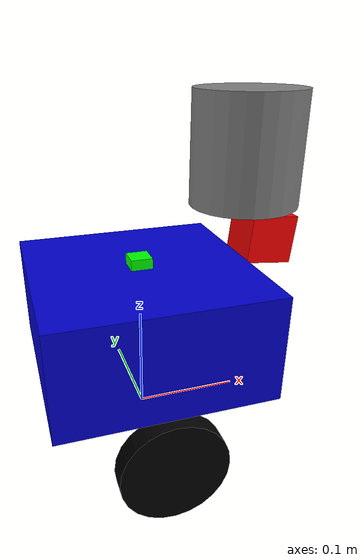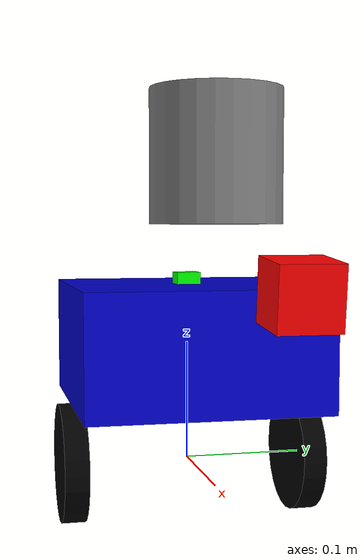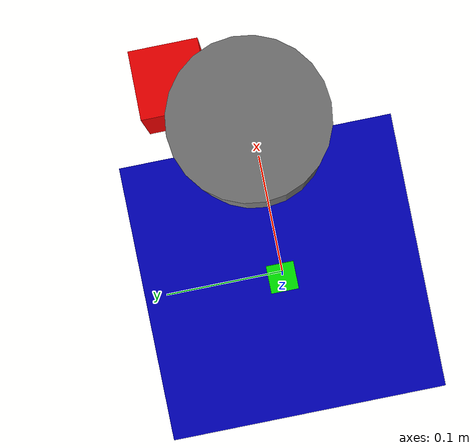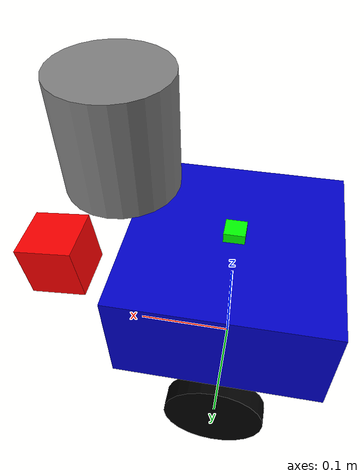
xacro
<?xml version="1.0"?>
<robot name="turtlebot3_waffle_pi_3d" xmlns:xacro="http://ros.org/wiki/xacro">

  <!-- 包含修正后的URDF -->
  <xacro:include filename="turtlebot3_waffle_pi_3d_fixed.urdf.xacro" />

  <!-- 为fast-livo2重命名话题（如果需要） -->
  <gazebo reference="velodyne_link">
    <sensor type="ray" name="velodyne_sensor">
      <pose>0 0 0 0 0 0</pose>
      <visualize>true</visualize>
      <update_rate>10</update_rate>
      <ray>
        <scan>
          <horizontal>
            <samples>360</samples>
            <resolution>1.0</resolution>
            <min_angle>-3.14159</min_angle>
            <max_angle>3.14159</max_angle>
          </horizontal>
          <vertical>
            <samples>16</samples>
            <resolution>1.0</resolution>
            <min_angle>-0.261799</min_angle>
            <max_angle>0.261799</max_angle>
          </vertical>
        </scan>
        <range>
          <min>0.1</min>
          <max>30.0</max>
          <resolution>0.01</resolution>
        </range>
        <noise>
          <type>gaussian</type>
        </noise>
      </ray>
      <!-- fast-livo2期望的话题名称 -->
      <plugin name="gazebo_ros_laser" filename="libgazebo_ros_ray_sensor.so">
        <topic_name>/livox/lidar</topic_name>  <!-- fast-livo2期望的话题 -->
        <frame_name>velodyne_link</frame_name>
      </plugin>
    </sensor>
  </gazebo>

  <!-- 相机适配fast-livo2 -->
  <gazebo reference="left_camera_link">
    <sensor type="camera" name="left_camera_sensor">
      <update_rate>30.0</update_rate>
      <camera name="left_camera">
        <horizontal_fov>1.3962634</horizontal_fov>
        <image>
          <width>640</width>
          <height>480</height>
          <format>R8G8B8</format>
        </image>
        <clip>
          <near>0.02</near>
          <far>300</far>
        </clip>
        <noise>
          <type>gaussian</type>
        </noise>
      </camera>
      <plugin name="camera_controller" filename="libgazebo_ros_camera.so">
        <ros>
          <namespace>/</namespace>
        </ros>
        <camera_name>left_camera</camera_name>
        <frame_name>left_camera_link</frame_name>
        <!-- fast-livo2可能需要特定的相机参数 -->
      </plugin>
    </sensor>
  </gazebo>

</robot>

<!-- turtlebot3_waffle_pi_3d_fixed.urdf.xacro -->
<robot name="turtlebot3_waffle_pi_3d" xmlns:xacro="http://ros.org/wiki/xacro">

  <!-- 基本底盘 -->
  <link name="base_footprint"/>

  <link name="base_link">
    <inertial>
      <mass value="1.5" />
      <origin xyz="0 0 0.05" />
      <inertia ixx="0.1" ixy="0" ixz="0" iyy="0.1" iyz="0" izz="0.2" />
    </inertial>

    <visual>
      <origin xyz="0 0 0.05" rpy="0 0 0" />
      <geometry>
        <box size="0.2 0.2 0.1" />
      </geometry>
      <material name="Blue">
        <color rgba="0 0 0.8 1" />
      </material>
    </visual>

    <collision>
      <origin xyz="0 0 0.05" rpy="0 0 0" />
      <geometry>
        <box size="0.2 0.2 0.1" />
      </geometry>
    </collision>
  </link>

  <joint name="base_footprint_joint" type="fixed">
    <origin xyz="0 0 0.05" rpy="0 0 0" />
    <parent link="base_footprint" />
    <child link="base_link" />
  </joint>

  <!-- 左轮 -->
  <link name="left_wheel">
    <inertial>
      <mass value="0.1" />
      <origin xyz="0 0 0" />
      <inertia ixx="0.001" ixy="0" ixz="0" iyy="0.001" iyz="0" izz="0.001" />
    </inertial>

    <visual>
      <origin xyz="0 0 0" rpy="1.5708 0 0" />
      <geometry>
        <cylinder length="0.02" radius="0.05" />
      </geometry>
      <material name="Black">
        <color rgba="0 0 0 1" />
      </material>
    </visual>
  </link>

  <joint name="left_wheel_joint" type="continuous">
    <origin xyz="0 0.1 -0.05" rpy="0 0 0" />
    <parent link="base_link" />
    <child link="left_wheel" />
    <axis xyz="0 1 0" />
  </joint>

  <!-- 右轮 -->
  <link name="right_wheel">
    <inertial>
      <mass value="0.1" />
      <origin xyz="0 0 0" />
      <inertia ixx="0.001" ixy="0" ixz="0" iyy="0.001" iyz="0" izz="0.001" />
    </inertial>

    <visual>
      <origin xyz="0 0 0" rpy="1.5708 0 0" />
      <geometry>
        <cylinder length="0.02" radius="0.05" />
      </geometry>
      <material name="Black">
        <color rgba="0 0 0 1" />
      </material>
    </visual>
  </link>

  <joint name="right_wheel_joint" type="continuous">
    <origin xyz="0 -0.1 -0.05" rpy="0 0 0" />
    <parent link="base_link" />
    <child link="right_wheel" />
    <axis xyz="0 1 0" />
  </joint>

  <!-- 3D雷达 -->
  <link name="velodyne_link">
    <inertial>
      <mass value="0.1" />
      <origin xyz="0 0 0" />
      <inertia ixx="0.001" ixy="0" ixz="0" iyy="0.001" iyz="0" izz="0.001" />
    </inertial>

    <visual>
      <origin xyz="0 0 0" rpy="0 0 0" />
      <geometry>
        <cylinder length="0.1" radius="0.05" />
      </geometry>
      <material name="Grey">
        <color rgba="0.5 0.5 0.5 1" />
      </material>
    </visual>
  </link>

  <joint name="velodyne_joint" type="fixed">
    <origin xyz="0.1 0 0.2" rpy="0 0 0" />
    <parent link="base_link" />
    <child link="velodyne_link" />
  </joint>

  <!-- Gazebo插件部分 -->
  <gazebo>
    <!-- 差分驱动控制器 -->
    <plugin name="differential_drive_controller" filename="libgazebo_ros_diff_drive.so">
      <ros>
        <namespace>/</namespace>
      </ros>
      <robot_namespace>/</robot_namespace>
      <publish_odom>true</publish_odom>
      <publish_odom_tf>true</publish_odom_tf>
      <publish_wheel_tf>true</publish_wheel_tf>
      <odometry_frame>odom</odometry_frame>
      <robot_base_frame>base_footprint</robot_base_frame>
      <left_joint>left_wheel_joint</left_joint>
      <right_joint>right_wheel_joint</right_joint>
      <wheel_separation>0.2</wheel_separation>
      <wheel_diameter>0.1</wheel_diameter>
      <wheel_acceleration>1.0</wheel_acceleration>
      <wheel_torque>10.0</wheel_torque>
      <odometry_source>world</odometry_source>
      <command_topic>cmd_vel</command_topic>
      <odometry_topic>odom</odometry_topic>
      <publish_odometry_msg>true</publish_odometry_msg>
    </plugin>
  </gazebo>

  <!-- 3D雷达传感器（修正噪声配置） -->
  <gazebo reference="velodyne_link">
    <sensor type="ray" name="velodyne_sensor">
      <pose>0 0 0 0 0 0</pose>
      <visualize>true</visualize>
      <update_rate>10</update_rate>
      <ray>
        <scan>
          <horizontal>
            <samples>360</samples>
            <resolution>1.0</resolution>
            <min_angle>-3.14159</min_angle>
            <max_angle>3.14159</max_angle>
          </horizontal>
          <vertical>
            <samples>16</samples>
            <resolution>1.0</resolution>
            <min_angle>-0.261799</min_angle>
            <max_angle>0.261799</max_angle>
          </vertical>
        </scan>
        <range>
          <min>0.1</min>
          <max>30.0</max>
          <resolution>0.01</resolution>
        </range>
        <!-- 修正噪声配置 -->
        <noise>
          <type>gaussian</type>
        </noise>
      </ray>
      <plugin name="gazebo_ros_laser" filename="libgazebo_ros_ray_sensor.so">
        <topic_name>/velodyne_points</topic_name>
        <frame_name>velodyne_link</frame_name>
      </plugin>
    </sensor>
  </gazebo>

  <!-- 左相机 -->
  <link name="left_camera_link">
    <inertial>
      <mass value="0.05" />
      <origin xyz="0 0 0" />
      <inertia ixx="0.0001" ixy="0" ixz="0" iyy="0.0001" iyz="0" izz="0.0001" />
    </inertial>

    <visual>
      <origin xyz="0 0 0" rpy="0 0 0" />
      <geometry>
        <box size="0.05 0.05 0.05" />
      </geometry>
      <material name="Red">
        <color rgba="1 0 0 1" />
      </material>
    </visual>
  </link>

  <joint name="left_camera_joint" type="fixed">
    <origin xyz="0.15 0.05 0.1" rpy="0 0.1 0" />
    <parent link="base_link" />
    <child link="left_camera_link" />
  </joint>

  <!-- 相机传感器（修正噪声配置） -->
  <gazebo reference="left_camera_link">
    <sensor type="camera" name="left_camera_sensor">
      <update_rate>30.0</update_rate>
      <camera name="left_camera">
        <horizontal_fov>1.3962634</horizontal_fov>
        <image>
          <width>640</width>
          <height>480</height>
          <format>R8G8B8</format>
        </image>
        <clip>
          <near>0.02</near>
          <far>300</far>
        </clip>
        <!-- 修正噪声配置 -->
        <noise>
          <type>gaussian</type>
        </noise>
      </camera>
      <plugin name="camera_controller" filename="libgazebo_ros_camera.so">
        <ros>
          <namespace>/</namespace>
        </ros>
        <camera_name>left_camera</camera_name>
        <frame_name>left_camera_link</frame_name>
      </plugin>
    </sensor>
  </gazebo>

  <!-- IMU（用于fast-livo2） -->
  <link name="imu_link">
    <inertial>
      <mass value="0.01" />
      <origin xyz="0 0 0" />
      <inertia ixx="0.00001" ixy="0" ixz="0" iyy="0.00001" iyz="0" izz="0.00001" />
    </inertial>

    <visual>
      <origin xyz="0 0 0" rpy="0 0 0" />
      <geometry>
        <box size="0.02 0.02 0.02" />
      </geometry>
      <material name="Green">
        <color rgba="0 1 0 1" />
      </material>
    </visual>
  </link>

  <joint name="imu_joint" type="fixed">
    <origin xyz="0.0 0 0.1" rpy="0 0 0" />
    <parent link="base_link" />
    <child link="imu_link" />
  </joint>

  <!-- IMU传感器（修正配置） -->
  <gazebo reference="imu_link">
    <sensor type="imu" name="imu_sensor">
      <always_on>true</always_on>
      <update_rate>100</update_rate>
      <visualize>true</visualize>
      <plugin name="imu_plugin" filename="libgazebo_ros_imu_sensor.so">
        <ros>
          <namespace>/</namespace>
        </ros>
        <topic_name>imu</topic_name>
        <body_name>imu_link</body_name>
        <update_rate>100</update_rate>
        <gravity_z>9.81</gravity_z>
        <xyz_offset>0 0 0</xyz_offset>
        <rpy_offset>0 0 0</rpy_offset>
        <frame_name>imu_link</frame_name>
        <initial_orientation_as_reference>false</initial_orientation_as_reference>
      </plugin>
    </sensor>
  </gazebo>

</robot>
